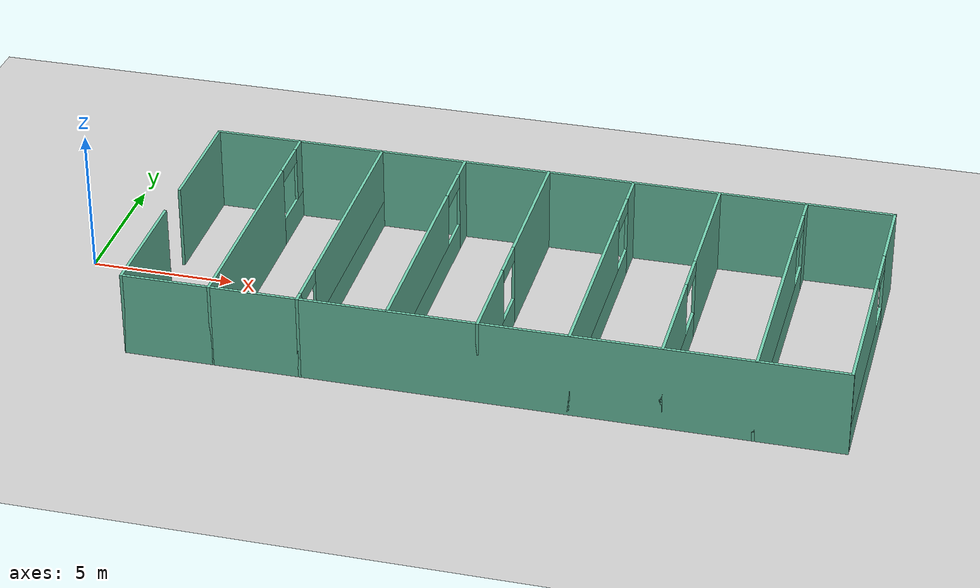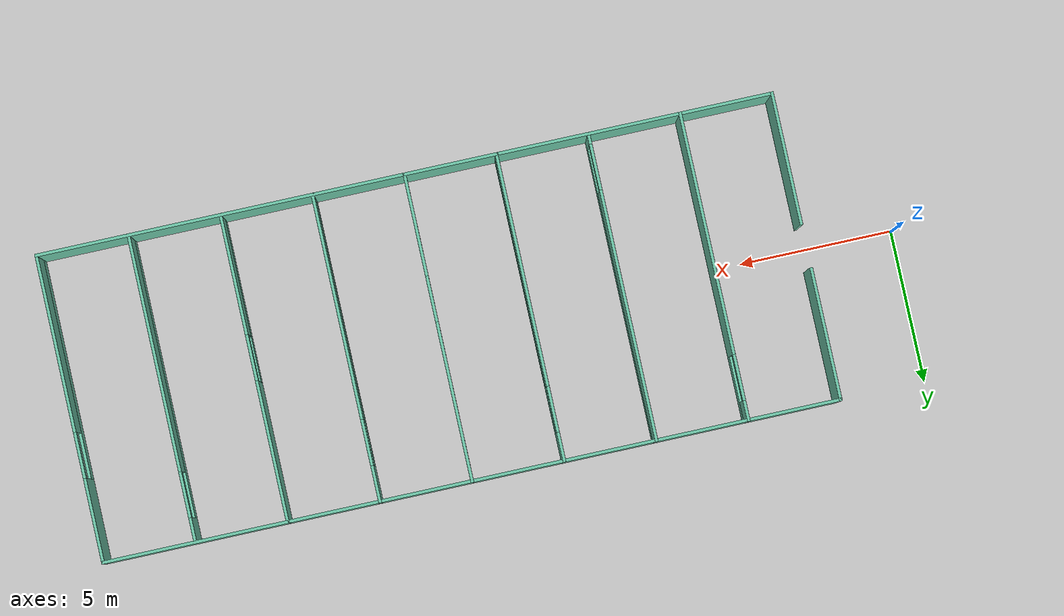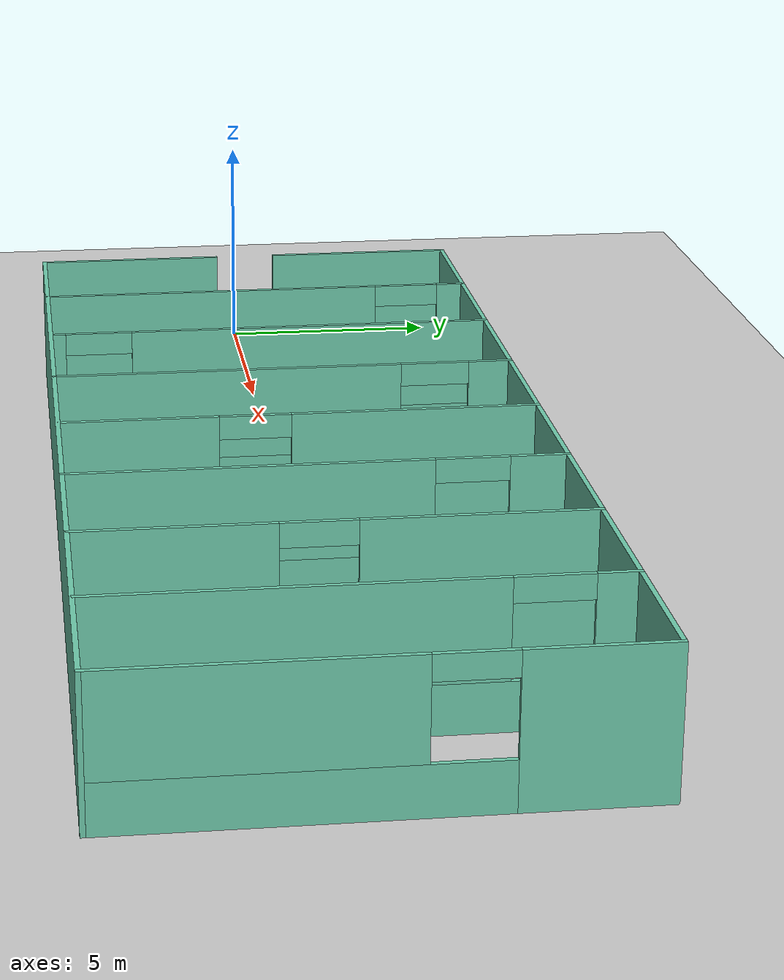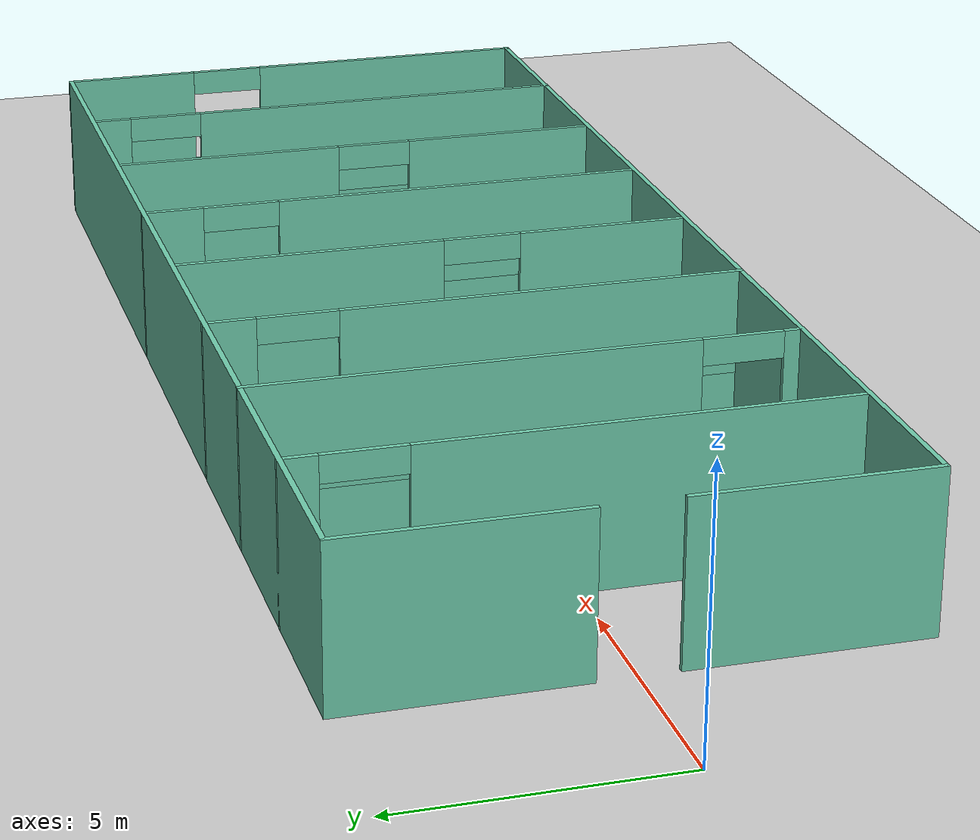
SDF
<sdf version="1.6">
 <world name="default">
  <light name="sun" type="directional">
   <pose>0 0 10 0 -0 0</pose>
   <diffuse>0.8 0.8 0.8 1</diffuse>
   <specular>0.1 0.1 0.1 1</specular>
   <attenuation>
    <range>1000</range>
    <constant>0.9</constant>
    <linear>0.01</linear>
    <quadratic>0.001</quadratic>
   </attenuation>
   <direction>-0.5 0.5 -1</direction>
  </light>
  <model name="ground_plane">
   <static>1</static>
   <link name="link">
    <collision name="collision">
     <geometry><plane><normal>0 0 1</normal><size>100 100</size></plane></geometry>
     <surface><friction><ode><mu>100</mu><mu2>50</mu2></ode></friction></surface>
    </collision>
    <visual name="visual">
     <cast_shadows>0</cast_shadows>
     <geometry><plane><normal>0 0 1</normal><size>100 100</size></plane></geometry>
     <material>
      <script><uri>file://media/materials/scripts/gazebo.material</uri><name>Gazebo/Grey</name></script>
     </material>
    </visual>
   </link>
  </model>
  <gravity>0 0 -9.8</gravity>
  <magnetic_field>6e-06 2.3e-05 -4.2e-05</magnetic_field>
  <atmosphere type="adiabatic"/>
  <physics name="default_physics" default="0" type="ode">
   <gravity>0 0 -9.8066</gravity>
   <ode>
    <solver>
     <type>quick</type>
     <iters>10</iters>
     <sor>1.3</sor>
     <use_dynamic_moi_rescaling>0</use_dynamic_moi_rescaling>
    </solver>
    <constraints>
     <cfm>0</cfm>
     <erp>0.2</erp>
     <contact_max_correcting_vel>100</contact_max_correcting_vel>
     <contact_surface_layer>0.001</contact_surface_layer>
    </constraints>
   </ode>
   <max_step_size>0.004</max_step_size>
   <real_time_factor>1</real_time_factor>
   <real_time_update_rate>250</real_time_update_rate>
   <magnetic_field>6.0e-6 2.3e-5 -4.2e-5</magnetic_field>
  </physics>
  <scene><ambient>0.4 0.4 0.4 1</ambient><background>0.7 0.7 0.7 1</background><shadows>1</shadows></scene>
  <spherical_coordinates>
   <surface_model>EARTH_WGS84</surface_model>
   <latitude_deg>0</latitude_deg>
   <longitude_deg>0</longitude_deg>
   <elevation>0</elevation>
   <heading_deg>0</heading_deg>
  </spherical_coordinates>
  <model name="zskt3">
   <pose>15 0 0 0 -0 0</pose>
   <link name="Wall_0">
    <collision name="Wall_0_Collision">
     <geometry><box><size>4.35 0.1 3</size></box></geometry>
     <pose>0 0 1.5 0 -0 0</pose>
    </collision>
    <visual name="Wall_0_Visual">
     <pose>0 0 1.5 0 -0 0</pose>
     <geometry><box><size>4.35 0.1 3</size></box></geometry>
     <material>
      <script><uri>file://media/materials/scripts/gazebo.material</uri><name>Gazebo/Grey</name></script>
      <ambient>0.435294 0.796078 0.67451 1</ambient>
     </material>
    </visual>
    <pose>-12 -2.875 0 0 0 -1.5708</pose>
   </link>
   <link name="Wall_11">
    <pose>0 0 0 0 0 -1.5708</pose>
    <visual name="Wall_11_Visual_0">
     <pose>-2.43415 0 1.5 0 -0 0</pose>
     <geometry><box><size>5.2317 0.1 3</size></box></geometry>
     <material>
      <script><uri>file://media/materials/scripts/gazebo.material</uri><name>Gazebo/Grey</name></script>
      <ambient>0.435294 0.796078 0.67451 1</ambient>
     </material>
    </visual>
    <collision name="Wall_11_Collision_0">
     <geometry><box><size>5.2317 0.1 3</size></box></geometry>
     <pose>-2.43415 0 1.5 0 -0 0</pose>
    </collision>
    <visual name="Wall_11_Visual_1">
     <pose>2.61585 0 0.5 0 -0 0</pose>
     <geometry><box><size>4.8683 0.1 1</size></box></geometry>
     <material>
      <script><uri>file://media/materials/scripts/gazebo.material</uri><name>Gazebo/Grey</name></script>
      <ambient>0.435294 0.796078 0.67451 1</ambient>
     </material>
    </visual>
    <collision name="Wall_11_Collision_1">
     <geometry><box><size>4.8683 0.1 1</size></box></geometry>
     <pose>2.61585 0 0.5 0 -0 0</pose>
    </collision>
    <visual name="Wall_11_Visual_2">
     <pose>3.36585 0 2 0 -0 0</pose>
     <geometry><box><size>3.3683 0.1 2</size></box></geometry>
     <material>
      <script><uri>file://media/materials/scripts/gazebo.material</uri><name>Gazebo/Grey</name></script>
      <ambient>0.435294 0.796078 0.67451 1</ambient>
     </material>
    </visual>
    <collision name="Wall_11_Collision_2">
     <geometry><box><size>3.3683 0.1 2</size></box></geometry>
     <pose>3.36585 0 2 0 -0 0</pose>
    </collision>
    <visual name="Wall_11_Visual_3">
     <pose>0.931698 0 2.75 0 -0 0</pose>
     <geometry><box><size>1.5 0.1 0.5</size></box></geometry>
     <material>
      <script><uri>file://media/materials/scripts/gazebo.material</uri><name>Gazebo/Grey</name></script>
      <ambient>0.435294 0.796078 0.67451 1</ambient>
     </material>
    </visual>
    <collision name="Wall_11_Collision_3">
     <geometry><box><size>1.5 0.1 0.5</size></box></geometry>
     <pose>0.931698 0 2.75 0 -0 0</pose>
    </collision>
   </link>
   <link name="Wall_13">
    <pose>3 0 0 0 0 -1.5708</pose>
    <visual name="Wall_13_Visual_0">
     <pose>-4.44247 0 1.5 0 -0 0</pose>
     <geometry><box><size>1.21507 0.1 3</size></box></geometry>
     <material>
      <script><uri>file://media/materials/scripts/gazebo.material</uri><name>Gazebo/Grey</name></script>
      <ambient>0.435294 0.796078 0.67451 1</ambient>
     </material>
    </visual>
    <collision name="Wall_13_Collision_0">
     <geometry><box><size>1.21507 0.1 3</size></box></geometry>
     <pose>-4.44247 0 1.5 0 -0 0</pose>
    </collision>
    <visual name="Wall_13_Visual_1">
     <pose>0.607534 0 0.5 0 -0 0</pose>
     <geometry><box><size>8.88493 0.1 1</size></box></geometry>
     <material>
      <script><uri>file://media/materials/scripts/gazebo.material</uri><name>Gazebo/Grey</name></script>
      <ambient>0.435294 0.796078 0.67451 1</ambient>
     </material>
    </visual>
    <collision name="Wall_13_Collision_1">
     <geometry><box><size>8.88493 0.1 1</size></box></geometry>
     <pose>0.607534 0 0.5 0 -0 0</pose>
    </collision>
    <visual name="Wall_13_Visual_2">
     <pose>1.35753 0 2 0 -0 0</pose>
     <geometry><box><size>7.38493 0.1 2</size></box></geometry>
     <material>
      <script><uri>file://media/materials/scripts/gazebo.material</uri><name>Gazebo/Grey</name></script>
      <ambient>0.435294 0.796078 0.67451 1</ambient>
     </material>
    </visual>
    <collision name="Wall_13_Collision_2">
     <geometry><box><size>7.38493 0.1 2</size></box></geometry>
     <pose>1.35753 0 2 0 -0 0</pose>
    </collision>
    <visual name="Wall_13_Visual_3">
     <pose>-3.08493 0 2.75 0 -0 0</pose>
     <geometry><box><size>1.5 0.1 0.5</size></box></geometry>
     <material>
      <script><uri>file://media/materials/scripts/gazebo.material</uri><name>Gazebo/Grey</name></script>
      <ambient>0.435294 0.796078 0.67451 1</ambient>
     </material>
    </visual>
    <collision name="Wall_13_Collision_3">
     <geometry><box><size>1.5 0.1 0.5</size></box></geometry>
     <pose>-3.08493 0 2.75 0 -0 0</pose>
    </collision>
   </link>
   <link name="Wall_15">
    <pose>6 0 0 0 0 -1.5708</pose>
    <visual name="Wall_15_Visual_0">
     <pose>-2.72967 0 1.5 0 -0 0</pose>
     <geometry><box><size>4.64066 0.1 3</size></box></geometry>
     <material>
      <script><uri>file://media/materials/scripts/gazebo.material</uri><name>Gazebo/Grey</name></script>
      <ambient>0.435294 0.796078 0.67451 1</ambient>
     </material>
    </visual>
    <collision name="Wall_15_Collision_0">
     <geometry><box><size>4.64066 0.1 3</size></box></geometry>
     <pose>-2.72967 0 1.5 0 -0 0</pose>
    </collision>
    <visual name="Wall_15_Visual_1">
     <pose>2.32033 0 0.5 0 -0 0</pose>
     <geometry><box><size>5.45934 0.1 1</size></box></geometry>
     <material>
      <script><uri>file://media/materials/scripts/gazebo.material</uri><name>Gazebo/Grey</name></script>
      <ambient>0.435294 0.796078 0.67451 1</ambient>
     </material>
    </visual>
    <collision name="Wall_15_Collision_1">
     <geometry><box><size>5.45934 0.1 1</size></box></geometry>
     <pose>2.32033 0 0.5 0 -0 0</pose>
    </collision>
    <visual name="Wall_15_Visual_2">
     <pose>3.07033 0 2 0 -0 0</pose>
     <geometry><box><size>3.95934 0.1 2</size></box></geometry>
     <material>
      <script><uri>file://media/materials/scripts/gazebo.material</uri><name>Gazebo/Grey</name></script>
      <ambient>0.435294 0.796078 0.67451 1</ambient>
     </material>
    </visual>
    <collision name="Wall_15_Collision_2">
     <geometry><box><size>3.95934 0.1 2</size></box></geometry>
     <pose>3.07033 0 2 0 -0 0</pose>
    </collision>
    <visual name="Wall_15_Visual_3">
     <pose>0.34066 0 2.75 0 -0 0</pose>
     <geometry><box><size>1.5 0.1 0.5</size></box></geometry>
     <material>
      <script><uri>file://media/materials/scripts/gazebo.material</uri><name>Gazebo/Grey</name></script>
      <ambient>0.435294 0.796078 0.67451 1</ambient>
     </material>
    </visual>
    <collision name="Wall_15_Collision_3">
     <geometry><box><size>1.5 0.1 0.5</size></box></geometry>
     <pose>0.34066 0 2.75 0 -0 0</pose>
    </collision>
   </link>
   <link name="Wall_18">
    <pose>9 0 0 0 0 -1.5708</pose>
    <visual name="Wall_18_Visual_0">
     <pose>-4.63091 0 1.5 0 -0 0</pose>
     <geometry><box><size>0.83817 0.1 3</size></box></geometry>
     <material>
      <script><uri>file://media/materials/scripts/gazebo.material</uri><name>Gazebo/Grey</name></script>
      <ambient>0.435294 0.796078 0.67451 1</ambient>
     </material>
    </visual>
    <collision name="Wall_18_Collision_0">
     <geometry><box><size>0.83817 0.1 3</size></box></geometry>
     <pose>-4.63091 0 1.5 0 -0 0</pose>
    </collision>
    <visual name="Wall_18_Visual_1">
     <pose>0.419085 0 0.5 0 -0 0</pose>
     <geometry><box><size>9.26183 0.1 1</size></box></geometry>
     <material>
      <script><uri>file://media/materials/scripts/gazebo.material</uri><name>Gazebo/Grey</name></script>
      <ambient>0.435294 0.796078 0.67451 1</ambient>
     </material>
    </visual>
    <collision name="Wall_18_Collision_1">
     <geometry><box><size>9.26183 0.1 1</size></box></geometry>
     <pose>0.419085 0 0.5 0 -0 0</pose>
    </collision>
    <visual name="Wall_18_Visual_2">
     <pose>1.16908 0 2 0 -0 0</pose>
     <geometry><box><size>7.76183 0.1 2</size></box></geometry>
     <material>
      <script><uri>file://media/materials/scripts/gazebo.material</uri><name>Gazebo/Grey</name></script>
      <ambient>0.435294 0.796078 0.67451 1</ambient>
     </material>
    </visual>
    <collision name="Wall_18_Collision_2">
     <geometry><box><size>7.76183 0.1 2</size></box></geometry>
     <pose>1.16908 0 2 0 -0 0</pose>
    </collision>
    <visual name="Wall_18_Visual_3">
     <pose>-3.46183 0 2.75 0 -0 0</pose>
     <geometry><box><size>1.5 0.1 0.5</size></box></geometry>
     <material>
      <script><uri>file://media/materials/scripts/gazebo.material</uri><name>Gazebo/Grey</name></script>
      <ambient>0.435294 0.796078 0.67451 1</ambient>
     </material>
    </visual>
    <collision name="Wall_18_Collision_3">
     <geometry><box><size>1.5 0.1 0.5</size></box></geometry>
     <pose>-3.46183 0 2.75 0 -0 0</pose>
    </collision>
   </link>
   <link name="Wall_2">
    <collision name="Wall_2_Collision">
     <geometry><box><size>4.35 0.1 3</size></box></geometry>
     <pose>0 0 1.5 0 -0 0</pose>
    </collision>
    <visual name="Wall_2_Visual">
     <pose>0 0 1.5 0 -0 0</pose>
     <geometry><box><size>4.35 0.1 3</size></box></geometry>
     <material>
      <script><uri>file://media/materials/scripts/gazebo.material</uri><name>Gazebo/Grey</name></script>
      <ambient>0.435294 0.796078 0.67451 1</ambient>
     </material>
    </visual>
    <pose>-12 2.875 0 0 -0 1.5708</pose>
   </link>
   <link name="Wall_20">
    <pose>12 0 0 0 0 -1.5708</pose>
    <visual name="Wall_20_Visual_0">
     <pose>-3.65929 0 1.5 0 -0 0</pose>
     <geometry><box><size>2.78143 0.1 3</size></box></geometry>
     <material>
      <script><uri>file://media/materials/scripts/gazebo.material</uri><name>Gazebo/Grey</name></script>
      <ambient>0.435294 0.796078 0.67451 1</ambient>
     </material>
    </visual>
    <collision name="Wall_20_Collision_0">
     <geometry><box><size>2.78143 0.1 3</size></box></geometry>
     <pose>-3.65929 0 1.5 0 -0 0</pose>
    </collision>
    <visual name="Wall_20_Visual_1">
     <pose>1.39071 0 0.5 0 -0 0</pose>
     <geometry><box><size>7.31857 0.1 1</size></box></geometry>
     <material>
      <script><uri>file://media/materials/scripts/gazebo.material</uri><name>Gazebo/Grey</name></script>
      <ambient>0.435294 0.796078 0.67451 1</ambient>
     </material>
    </visual>
    <collision name="Wall_20_Collision_1">
     <geometry><box><size>7.31857 0.1 1</size></box></geometry>
     <pose>1.39071 0 0.5 0 -0 0</pose>
    </collision>
    <visual name="Wall_20_Visual_2">
     <pose>2.14071 0 2 0 -0 0</pose>
     <geometry><box><size>5.81857 0.1 2</size></box></geometry>
     <material>
      <script><uri>file://media/materials/scripts/gazebo.material</uri><name>Gazebo/Grey</name></script>
      <ambient>0.435294 0.796078 0.67451 1</ambient>
     </material>
    </visual>
    <collision name="Wall_20_Collision_2">
     <geometry><box><size>5.81857 0.1 2</size></box></geometry>
     <pose>2.14071 0 2 0 -0 0</pose>
    </collision>
    <visual name="Wall_20_Visual_3">
     <pose>-1.51857 0 2.75 0 -0 0</pose>
     <geometry><box><size>1.5 0.1 0.5</size></box></geometry>
     <material>
      <script><uri>file://media/materials/scripts/gazebo.material</uri><name>Gazebo/Grey</name></script>
      <ambient>0.435294 0.796078 0.67451 1</ambient>
     </material>
    </visual>
    <collision name="Wall_20_Collision_3">
     <geometry><box><size>1.5 0.1 0.5</size></box></geometry>
     <pose>-1.51857 0 2.75 0 -0 0</pose>
    </collision>
   </link>
   <link name="Wall_22">
    <collision name="Wall_22_Collision">
     <geometry><box><size>24.1 0.1 3</size></box></geometry>
     <pose>0 0 1.5 0 -0 0</pose>
    </collision>
    <visual name="Wall_22_Visual">
     <pose>0 0 1.5 0 -0 0</pose>
     <geometry><box><size>24.1 0.1 3</size></box></geometry>
     <material>
      <script><uri>file://media/materials/scripts/gazebo.material</uri><name>Gazebo/Grey</name></script>
      <ambient>0.435294 0.796078 0.67451 1</ambient>
     </material>
    </visual>
    <pose>0 5 0 0 -0 0</pose>
   </link>
   <link name="Wall_24">
    <collision name="Wall_24_Collision">
     <geometry><box><size>24.1 0.1 3</size></box></geometry>
     <pose>0 0 1.5 0 -0 0</pose>
    </collision>
    <visual name="Wall_24_Visual">
     <pose>0 0 1.5 0 -0 0</pose>
     <geometry><box><size>24.1 0.1 3</size></box></geometry>
     <material>
      <script><uri>file://media/materials/scripts/gazebo.material</uri><name>Gazebo/Grey</name></script>
      <ambient>0.435294 0.796078 0.67451 1</ambient>
     </material>
    </visual>
    <pose>0 -5 0 0 -0 0</pose>
   </link>
   <link name="Wall_4">
    <pose>-9 0 0 0 -0 1.5708</pose>
    <visual name="Wall_4_Visual_0">
     <pose>-1.09153 0 1.5 0 -0 0</pose>
     <geometry><box><size>7.91694 0.1 3</size></box></geometry>
     <material>
      <script><uri>file://media/materials/scripts/gazebo.material</uri><name>Gazebo/Grey</name></script>
      <ambient>0.435294 0.796078 0.67451 1</ambient>
     </material>
    </visual>
    <collision name="Wall_4_Collision_0">
     <geometry><box><size>7.91694 0.1 3</size></box></geometry>
     <pose>-1.09153 0 1.5 0 -0 0</pose>
    </collision>
    <visual name="Wall_4_Visual_1">
     <pose>3.95847 0 0.5 0 -0 0</pose>
     <geometry><box><size>2.18306 0.1 1</size></box></geometry>
     <material>
      <script><uri>file://media/materials/scripts/gazebo.material</uri><name>Gazebo/Grey</name></script>
      <ambient>0.435294 0.796078 0.67451 1</ambient>
     </material>
    </visual>
    <collision name="Wall_4_Collision_1">
     <geometry><box><size>2.18306 0.1 1</size></box></geometry>
     <pose>3.95847 0 0.5 0 -0 0</pose>
    </collision>
    <visual name="Wall_4_Visual_2">
     <pose>4.70847 0 2 0 -0 0</pose>
     <geometry><box><size>0.683064 0.1 2</size></box></geometry>
     <material>
      <script><uri>file://media/materials/scripts/gazebo.material</uri><name>Gazebo/Grey</name></script>
      <ambient>0.435294 0.796078 0.67451 1</ambient>
     </material>
    </visual>
    <collision name="Wall_4_Collision_2">
     <geometry><box><size>0.683064 0.1 2</size></box></geometry>
     <pose>4.70847 0 2 0 -0 0</pose>
    </collision>
    <visual name="Wall_4_Visual_3">
     <pose>3.61694 0 2.75 0 -0 0</pose>
     <geometry><box><size>1.5 0.1 0.5</size></box></geometry>
     <material>
      <script><uri>file://media/materials/scripts/gazebo.material</uri><name>Gazebo/Grey</name></script>
      <ambient>0.435294 0.796078 0.67451 1</ambient>
     </material>
    </visual>
    <collision name="Wall_4_Collision_3">
     <geometry><box><size>1.5 0.1 0.5</size></box></geometry>
     <pose>3.61694 0 2.75 0 -0 0</pose>
    </collision>
   </link>
   <link name="Wall_6">
    <pose>-6 0 0 0 -0 1.5708</pose>
    <visual name="Wall_6_Visual_0">
     <pose>-4.85546 0 1.5 0 -0 0</pose>
     <geometry><box><size>0.389079 0.1 3</size></box></geometry>
     <material>
      <script><uri>file://media/materials/scripts/gazebo.material</uri><name>Gazebo/Grey</name></script>
      <ambient>0.435294 0.796078 0.67451 1</ambient>
     </material>
    </visual>
    <collision name="Wall_6_Collision_0">
     <geometry><box><size>0.389079 0.1 3</size></box></geometry>
     <pose>-4.85546 0 1.5 0 -0 0</pose>
    </collision>
    <visual name="Wall_6_Visual_1">
     <pose>0.19454 0 0.5 0 -0 0</pose>
     <geometry><box><size>9.71092 0.1 1</size></box></geometry>
     <material>
      <script><uri>file://media/materials/scripts/gazebo.material</uri><name>Gazebo/Grey</name></script>
      <ambient>0.435294 0.796078 0.67451 1</ambient>
     </material>
    </visual>
    <collision name="Wall_6_Collision_1">
     <geometry><box><size>9.71092 0.1 1</size></box></geometry>
     <pose>0.19454 0 0.5 0 -0 0</pose>
    </collision>
    <visual name="Wall_6_Visual_2">
     <pose>0.94454 0 2 0 -0 0</pose>
     <geometry><box><size>8.21092 0.1 2</size></box></geometry>
     <material>
      <script><uri>file://media/materials/scripts/gazebo.material</uri><name>Gazebo/Grey</name></script>
      <ambient>0.435294 0.796078 0.67451 1</ambient>
     </material>
    </visual>
    <collision name="Wall_6_Collision_2">
     <geometry><box><size>8.21092 0.1 2</size></box></geometry>
     <pose>0.94454 0 2 0 -0 0</pose>
    </collision>
    <visual name="Wall_6_Visual_3">
     <pose>-3.91092 0 2.75 0 -0 0</pose>
     <geometry><box><size>1.5 0.1 0.5</size></box></geometry>
     <material>
      <script><uri>file://media/materials/scripts/gazebo.material</uri><name>Gazebo/Grey</name></script>
      <ambient>0.435294 0.796078 0.67451 1</ambient>
     </material>
    </visual>
    <collision name="Wall_6_Collision_3">
     <geometry><box><size>1.5 0.1 0.5</size></box></geometry>
     <pose>-3.91092 0 2.75 0 -0 0</pose>
    </collision>
   </link>
   <link name="Wall_8">
    <pose>-3 0 0 0 0 -1.5708</pose>
    <visual name="Wall_8_Visual_0">
     <pose>-4.56217 0 1.5 0 -0 0</pose>
     <geometry><box><size>0.975666 0.1 3</size></box></geometry>
     <material>
      <script><uri>file://media/materials/scripts/gazebo.material</uri><name>Gazebo/Grey</name></script>
      <ambient>0.435294 0.796078 0.67451 1</ambient>
     </material>
    </visual>
    <collision name="Wall_8_Collision_0">
     <geometry><box><size>0.975666 0.1 3</size></box></geometry>
     <pose>-4.56217 0 1.5 0 -0 0</pose>
    </collision>
    <visual name="Wall_8_Visual_1">
     <pose>0.487833 0 0.5 0 -0 0</pose>
     <geometry><box><size>9.12433 0.1 1</size></box></geometry>
     <material>
      <script><uri>file://media/materials/scripts/gazebo.material</uri><name>Gazebo/Grey</name></script>
      <ambient>0.435294 0.796078 0.67451 1</ambient>
     </material>
    </visual>
    <collision name="Wall_8_Collision_1">
     <geometry><box><size>9.12433 0.1 1</size></box></geometry>
     <pose>0.487833 0 0.5 0 -0 0</pose>
    </collision>
    <visual name="Wall_8_Visual_2">
     <pose>1.23783 0 2 0 -0 0</pose>
     <geometry><box><size>7.62433 0.1 2</size></box></geometry>
     <material>
      <script><uri>file://media/materials/scripts/gazebo.material</uri><name>Gazebo/Grey</name></script>
      <ambient>0.435294 0.796078 0.67451 1</ambient>
     </material>
    </visual>
    <collision name="Wall_8_Collision_2">
     <geometry><box><size>7.62433 0.1 2</size></box></geometry>
     <pose>1.23783 0 2 0 -0 0</pose>
    </collision>
    <visual name="Wall_8_Visual_3">
     <pose>-3.32433 0 2.75 0 -0 0</pose>
     <geometry><box><size>1.5 0.1 0.5</size></box></geometry>
     <material>
      <script><uri>file://media/materials/scripts/gazebo.material</uri><name>Gazebo/Grey</name></script>
      <ambient>0.435294 0.796078 0.67451 1</ambient>
     </material>
    </visual>
    <collision name="Wall_8_Collision_3">
     <geometry><box><size>1.5 0.1 0.5</size></box></geometry>
     <pose>-3.32433 0 2.75 0 -0 0</pose>
    </collision>
   </link>
   <static>1</static>
  </model>
 </world>
</sdf>
